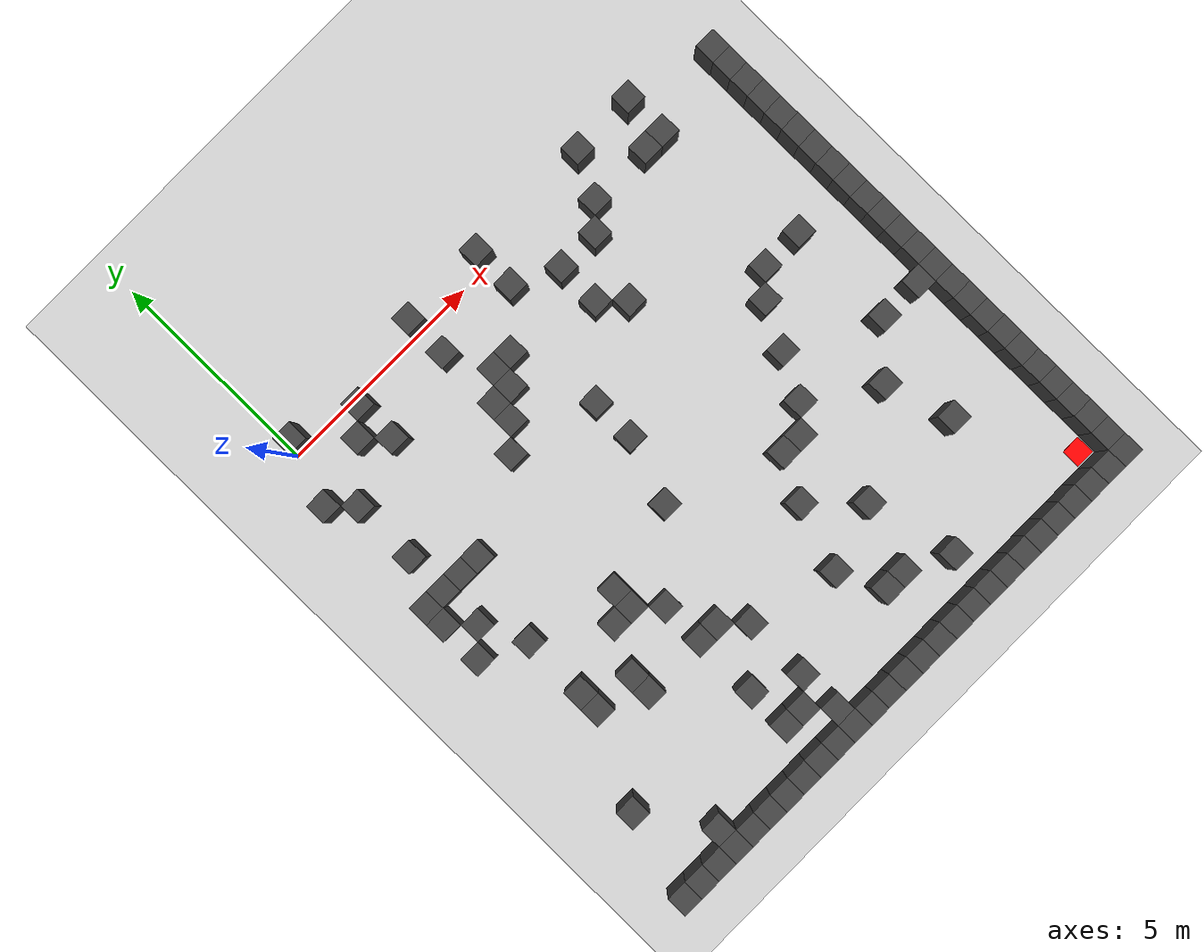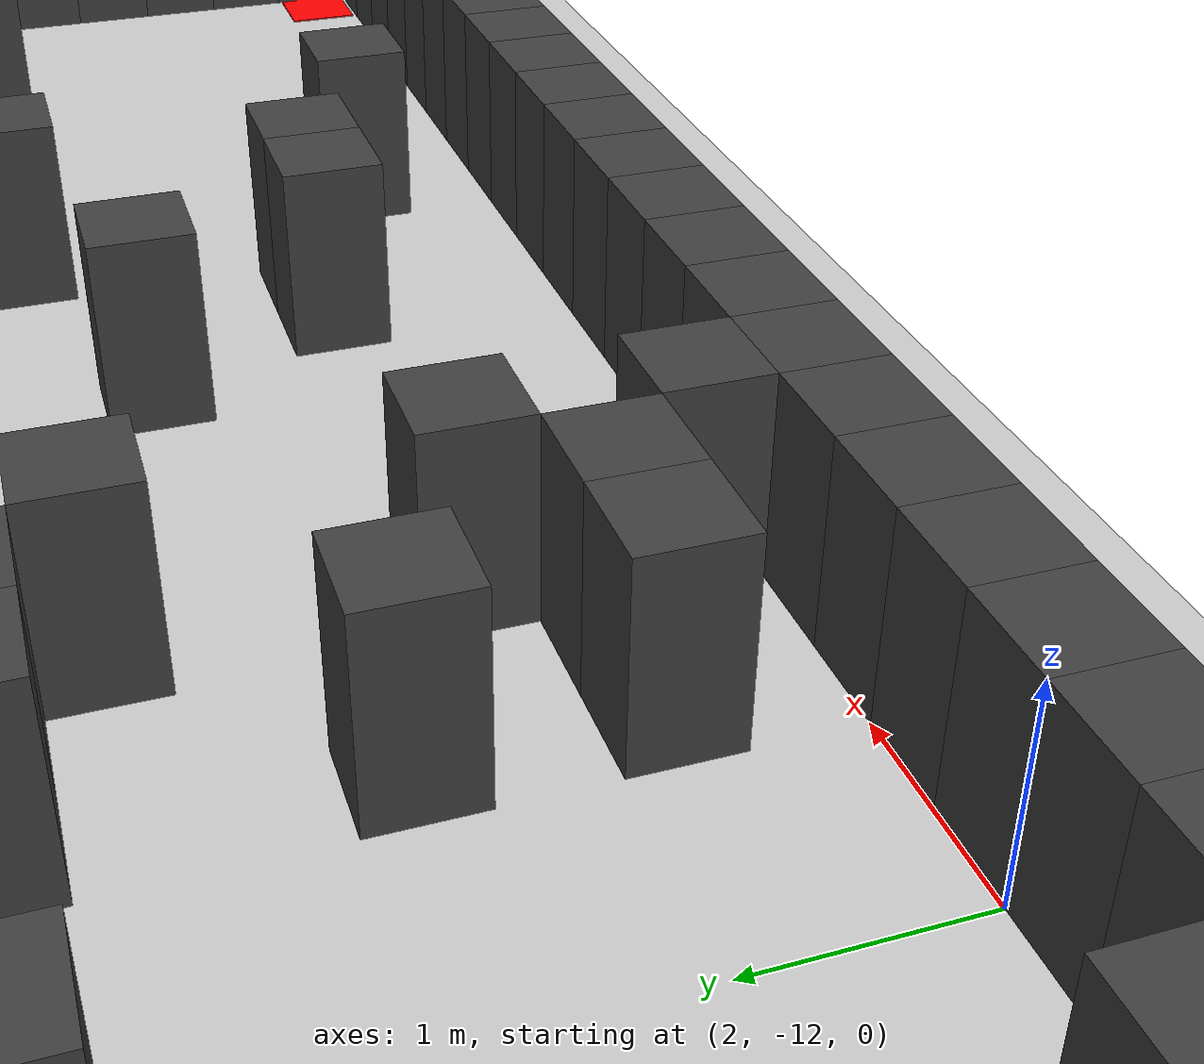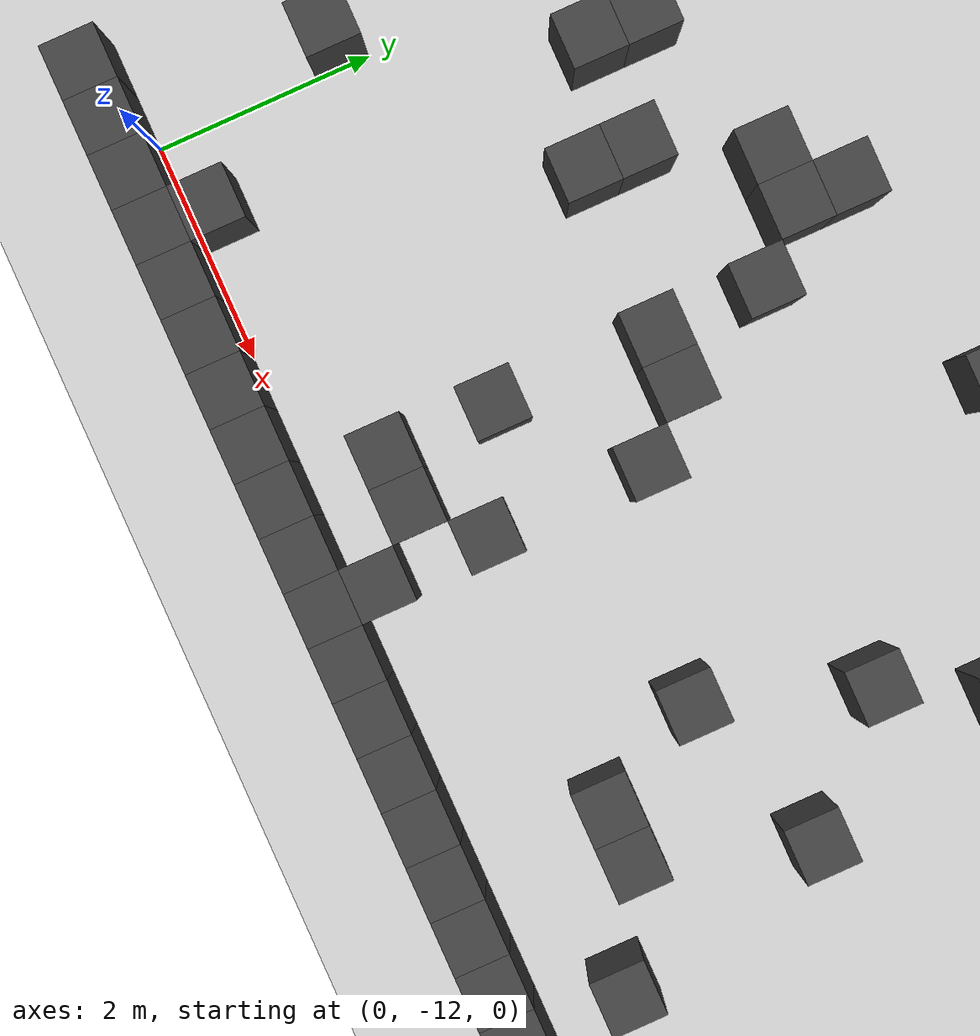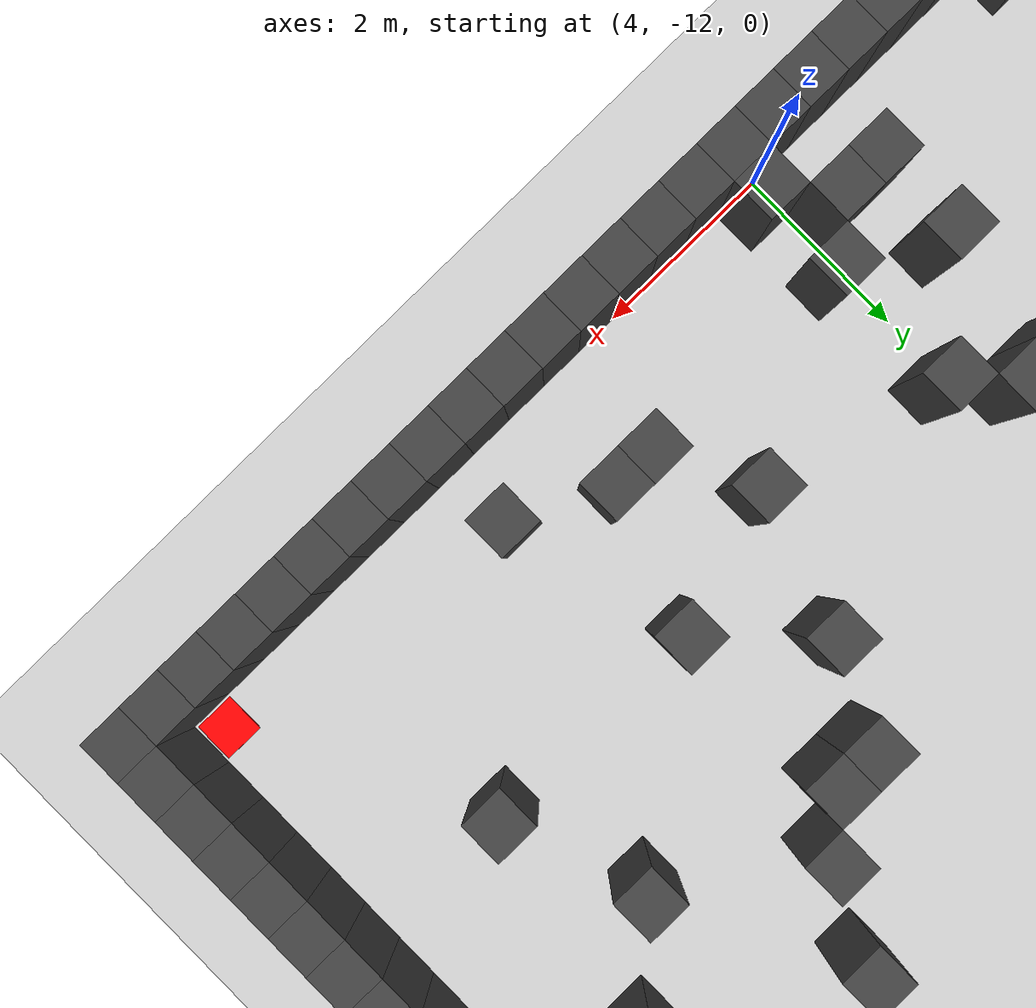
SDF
<sdf version="1.7">
 <world name="map_2523">
  <model name="ground_plane">
   <static>true</static>
   <link name="link">
    <collision name="collision">
     <geometry><plane><normal>0 0 1</normal><size>200 200</size></plane></geometry>
    </collision>
    <visual name="visual">
     <geometry><plane><normal>0 0 1</normal><size>200 200</size></plane></geometry>
     <material><ambient>0.8 0.8 0.8 1</ambient><diffuse>0.8 0.8 0.8 1</diffuse></material>
    </visual>
   </link>
  </model>
  <model name="maze_environment">
   <static>true</static>
   <link name="wall_250">
    <pose>0.250 0.250 0.500 0 0 0</pose>
    <collision name="col"><geometry><box><size>0.5 0.5 1.0</size></box></geometry></collision>
    <visual name="vis">
     <geometry><box><size>0.5 0.5 1.0</size></box></geometry>
     <material><ambient>0.15 0.15 0.15 1</ambient><diffuse>0.25 0.25 0.25 1</diffuse></material>
    </visual>
   </link>
   <link name="wall_251">
    <pose>3.750 0.250 0.500 0 0 0</pose>
    <collision name="col"><geometry><box><size>0.5 0.5 1.0</size></box></geometry></collision>
    <visual name="vis">
     <geometry><box><size>0.5 0.5 1.0</size></box></geometry>
     <material><ambient>0.15 0.15 0.15 1</ambient><diffuse>0.25 0.25 0.25 1</diffuse></material>
    </visual>
   </link>
   <link name="wall_252">
    <pose>5.750 0.250 0.500 0 0 0</pose>
    <collision name="col"><geometry><box><size>0.5 0.5 1.0</size></box></geometry></collision>
    <visual name="vis">
     <geometry><box><size>0.5 0.5 1.0</size></box></geometry>
     <material><ambient>0.15 0.15 0.15 1</ambient><diffuse>0.25 0.25 0.25 1</diffuse></material>
    </visual>
   </link>
   <link name="wall_253">
    <pose>8.750 0.250 0.500 0 0 0</pose>
    <collision name="col"><geometry><box><size>0.5 0.5 1.0</size></box></geometry></collision>
    <visual name="vis">
     <geometry><box><size>0.5 0.5 1.0</size></box></geometry>
     <material><ambient>0.15 0.15 0.15 1</ambient><diffuse>0.25 0.25 0.25 1</diffuse></material>
    </visual>
   </link>
   <link name="wall_254">
    <pose>10.250 0.250 0.500 0 0 0</pose>
    <collision name="col"><geometry><box><size>0.5 0.5 1.0</size></box></geometry></collision>
    <visual name="vis">
     <geometry><box><size>0.5 0.5 1.0</size></box></geometry>
     <material><ambient>0.15 0.15 0.15 1</ambient><diffuse>0.25 0.25 0.25 1</diffuse></material>
    </visual>
   </link>
   <link name="wall_261">
    <pose>1.750 -0.250 0.500 0 0 0</pose>
    <collision name="col"><geometry><box><size>0.5 0.5 1.0</size></box></geometry></collision>
    <visual name="vis">
     <geometry><box><size>0.5 0.5 1.0</size></box></geometry>
     <material><ambient>0.15 0.15 0.15 1</ambient><diffuse>0.25 0.25 0.25 1</diffuse></material>
    </visual>
   </link>
   <link name="wall_262">
    <pose>12.250 -0.250 0.500 0 0 0</pose>
    <collision name="col"><geometry><box><size>0.5 0.5 1.0</size></box></geometry></collision>
    <visual name="vis">
     <geometry><box><size>0.5 0.5 1.0</size></box></geometry>
     <material><ambient>0.15 0.15 0.15 1</ambient><diffuse>0.25 0.25 0.25 1</diffuse></material>
    </visual>
   </link>
   <link name="wall_266">
    <pose>1.250 -0.750 0.500 0 0 0</pose>
    <collision name="col"><geometry><box><size>0.5 0.5 1.0</size></box></geometry></collision>
    <visual name="vis">
     <geometry><box><size>0.5 0.5 1.0</size></box></geometry>
     <material><ambient>0.15 0.15 0.15 1</ambient><diffuse>0.25 0.25 0.25 1</diffuse></material>
    </visual>
   </link>
   <link name="wall_267">
    <pose>3.750 -0.750 0.500 0 0 0</pose>
    <collision name="col"><geometry><box><size>0.5 0.5 1.0</size></box></geometry></collision>
    <visual name="vis">
     <geometry><box><size>0.5 0.5 1.0</size></box></geometry>
     <material><ambient>0.15 0.15 0.15 1</ambient><diffuse>0.25 0.25 0.25 1</diffuse></material>
    </visual>
   </link>
   <link name="wall_268">
    <pose>5.750 -0.750 0.500 0 0 0</pose>
    <collision name="col"><geometry><box><size>0.5 0.5 1.0</size></box></geometry></collision>
    <visual name="vis">
     <geometry><box><size>0.5 0.5 1.0</size></box></geometry>
     <material><ambient>0.15 0.15 0.15 1</ambient><diffuse>0.25 0.25 0.25 1</diffuse></material>
    </visual>
   </link>
   <link name="wall_269">
    <pose>8.250 -0.750 0.500 0 0 0</pose>
    <collision name="col"><geometry><box><size>0.5 0.5 1.0</size></box></geometry></collision>
    <visual name="vis">
     <geometry><box><size>0.5 0.5 1.0</size></box></geometry>
     <material><ambient>0.15 0.15 0.15 1</ambient><diffuse>0.25 0.25 0.25 1</diffuse></material>
    </visual>
   </link>
   <link name="wall_270">
    <pose>9.750 -0.750 0.500 0 0 0</pose>
    <collision name="col"><geometry><box><size>0.5 0.5 1.0</size></box></geometry></collision>
    <visual name="vis">
     <geometry><box><size>0.5 0.5 1.0</size></box></geometry>
     <material><ambient>0.15 0.15 0.15 1</ambient><diffuse>0.25 0.25 0.25 1</diffuse></material>
    </visual>
   </link>
   <link name="wall_271">
    <pose>10.250 -0.750 0.500 0 0 0</pose>
    <collision name="col"><geometry><box><size>0.5 0.5 1.0</size></box></geometry></collision>
    <visual name="vis">
     <geometry><box><size>0.5 0.5 1.0</size></box></geometry>
     <material><ambient>0.15 0.15 0.15 1</ambient><diffuse>0.25 0.25 0.25 1</diffuse></material>
    </visual>
   </link>
   <link name="wall_272">
    <pose>12.250 -0.750 0.500 0 0 0</pose>
    <collision name="col"><geometry><box><size>0.5 0.5 1.0</size></box></geometry></collision>
    <visual name="vis">
     <geometry><box><size>0.5 0.5 1.0</size></box></geometry>
     <material><ambient>0.15 0.15 0.15 1</ambient><diffuse>0.25 0.25 0.25 1</diffuse></material>
    </visual>
   </link>
   <link name="wall_279">
    <pose>-0.250 -1.250 0.500 0 0 0</pose>
    <collision name="col"><geometry><box><size>0.5 0.5 1.0</size></box></geometry></collision>
    <visual name="vis">
     <geometry><box><size>0.5 0.5 1.0</size></box></geometry>
     <material><ambient>0.15 0.15 0.15 1</ambient><diffuse>0.25 0.25 0.25 1</diffuse></material>
    </visual>
   </link>
   <link name="wall_280">
    <pose>1.750 -1.250 0.500 0 0 0</pose>
    <collision name="col"><geometry><box><size>0.5 0.5 1.0</size></box></geometry></collision>
    <visual name="vis">
     <geometry><box><size>0.5 0.5 1.0</size></box></geometry>
     <material><ambient>0.15 0.15 0.15 1</ambient><diffuse>0.25 0.25 0.25 1</diffuse></material>
    </visual>
   </link>
   <link name="wall_281">
    <pose>6.750 -1.250 0.500 0 0 0</pose>
    <collision name="col"><geometry><box><size>0.5 0.5 1.0</size></box></geometry></collision>
    <visual name="vis">
     <geometry><box><size>0.5 0.5 1.0</size></box></geometry>
     <material><ambient>0.15 0.15 0.15 1</ambient><diffuse>0.25 0.25 0.25 1</diffuse></material>
    </visual>
   </link>
   <link name="wall_282">
    <pose>7.750 -1.250 0.500 0 0 0</pose>
    <collision name="col"><geometry><box><size>0.5 0.5 1.0</size></box></geometry></collision>
    <visual name="vis">
     <geometry><box><size>0.5 0.5 1.0</size></box></geometry>
     <material><ambient>0.15 0.15 0.15 1</ambient><diffuse>0.25 0.25 0.25 1</diffuse></material>
    </visual>
   </link>
   <link name="wall_283">
    <pose>12.250 -1.250 0.500 0 0 0</pose>
    <collision name="col"><geometry><box><size>0.5 0.5 1.0</size></box></geometry></collision>
    <visual name="vis">
     <geometry><box><size>0.5 0.5 1.0</size></box></geometry>
     <material><ambient>0.15 0.15 0.15 1</ambient><diffuse>0.25 0.25 0.25 1</diffuse></material>
    </visual>
   </link>
   <link name="wall_290">
    <pose>0.250 -1.750 0.500 0 0 0</pose>
    <collision name="col"><geometry><box><size>0.5 0.5 1.0</size></box></geometry></collision>
    <visual name="vis">
     <geometry><box><size>0.5 0.5 1.0</size></box></geometry>
     <material><ambient>0.15 0.15 0.15 1</ambient><diffuse>0.25 0.25 0.25 1</diffuse></material>
    </visual>
   </link>
   <link name="wall_291">
    <pose>4.250 -1.750 0.500 0 0 0</pose>
    <collision name="col"><geometry><box><size>0.5 0.5 1.0</size></box></geometry></collision>
    <visual name="vis">
     <geometry><box><size>0.5 0.5 1.0</size></box></geometry>
     <material><ambient>0.15 0.15 0.15 1</ambient><diffuse>0.25 0.25 0.25 1</diffuse></material>
    </visual>
   </link>
   <link name="wall_292">
    <pose>4.750 -1.750 0.500 0 0 0</pose>
    <collision name="col"><geometry><box><size>0.5 0.5 1.0</size></box></geometry></collision>
    <visual name="vis">
     <geometry><box><size>0.5 0.5 1.0</size></box></geometry>
     <material><ambient>0.15 0.15 0.15 1</ambient><diffuse>0.25 0.25 0.25 1</diffuse></material>
    </visual>
   </link>
   <link name="wall_293">
    <pose>12.250 -1.750 0.500 0 0 0</pose>
    <collision name="col"><geometry><box><size>0.5 0.5 1.0</size></box></geometry></collision>
    <visual name="vis">
     <geometry><box><size>0.5 0.5 1.0</size></box></geometry>
     <material><ambient>0.15 0.15 0.15 1</ambient><diffuse>0.25 0.25 0.25 1</diffuse></material>
    </visual>
   </link>
   <link name="wall_297">
    <pose>3.750 -2.250 0.500 0 0 0</pose>
    <collision name="col"><geometry><box><size>0.5 0.5 1.0</size></box></geometry></collision>
    <visual name="vis">
     <geometry><box><size>0.5 0.5 1.0</size></box></geometry>
     <material><ambient>0.15 0.15 0.15 1</ambient><diffuse>0.25 0.25 0.25 1</diffuse></material>
    </visual>
   </link>
   <link name="wall_298">
    <pose>4.250 -2.250 0.500 0 0 0</pose>
    <collision name="col"><geometry><box><size>0.5 0.5 1.0</size></box></geometry></collision>
    <visual name="vis">
     <geometry><box><size>0.5 0.5 1.0</size></box></geometry>
     <material><ambient>0.15 0.15 0.15 1</ambient><diffuse>0.25 0.25 0.25 1</diffuse></material>
    </visual>
   </link>
   <link name="wall_299">
    <pose>6.750 -2.250 0.500 0 0 0</pose>
    <collision name="col"><geometry><box><size>0.5 0.5 1.0</size></box></geometry></collision>
    <visual name="vis">
     <geometry><box><size>0.5 0.5 1.0</size></box></geometry>
     <material><ambient>0.15 0.15 0.15 1</ambient><diffuse>0.25 0.25 0.25 1</diffuse></material>
    </visual>
   </link>
   <link name="wall_300">
    <pose>12.250 -2.250 0.500 0 0 0</pose>
    <collision name="col"><geometry><box><size>0.5 0.5 1.0</size></box></geometry></collision>
    <visual name="vis">
     <geometry><box><size>0.5 0.5 1.0</size></box></geometry>
     <material><ambient>0.15 0.15 0.15 1</ambient><diffuse>0.25 0.25 0.25 1</diffuse></material>
    </visual>
   </link>
   <link name="wall_305">
    <pose>3.750 -2.750 0.500 0 0 0</pose>
    <collision name="col"><geometry><box><size>0.5 0.5 1.0</size></box></geometry></collision>
    <visual name="vis">
     <geometry><box><size>0.5 0.5 1.0</size></box></geometry>
     <material><ambient>0.15 0.15 0.15 1</ambient><diffuse>0.25 0.25 0.25 1</diffuse></material>
    </visual>
   </link>
   <link name="wall_306">
    <pose>7.250 -2.750 0.500 0 0 0</pose>
    <collision name="col"><geometry><box><size>0.5 0.5 1.0</size></box></geometry></collision>
    <visual name="vis">
     <geometry><box><size>0.5 0.5 1.0</size></box></geometry>
     <material><ambient>0.15 0.15 0.15 1</ambient><diffuse>0.25 0.25 0.25 1</diffuse></material>
    </visual>
   </link>
   <link name="wall_307">
    <pose>12.250 -2.750 0.500 0 0 0</pose>
    <collision name="col"><geometry><box><size>0.5 0.5 1.0</size></box></geometry></collision>
    <visual name="vis">
     <geometry><box><size>0.5 0.5 1.0</size></box></geometry>
     <material><ambient>0.15 0.15 0.15 1</ambient><diffuse>0.25 0.25 0.25 1</diffuse></material>
    </visual>
   </link>
   <link name="wall_312">
    <pose>0.250 -3.250 0.500 0 0 0</pose>
    <collision name="col"><geometry><box><size>0.5 0.5 1.0</size></box></geometry></collision>
    <visual name="vis">
     <geometry><box><size>0.5 0.5 1.0</size></box></geometry>
     <material><ambient>0.15 0.15 0.15 1</ambient><diffuse>0.25 0.25 0.25 1</diffuse></material>
    </visual>
   </link>
   <link name="wall_313">
    <pose>3.250 -3.250 0.500 0 0 0</pose>
    <collision name="col"><geometry><box><size>0.5 0.5 1.0</size></box></geometry></collision>
    <visual name="vis">
     <geometry><box><size>0.5 0.5 1.0</size></box></geometry>
     <material><ambient>0.15 0.15 0.15 1</ambient><diffuse>0.25 0.25 0.25 1</diffuse></material>
    </visual>
   </link>
   <link name="wall_314">
    <pose>12.250 -3.250 0.500 0 0 0</pose>
    <collision name="col"><geometry><box><size>0.5 0.5 1.0</size></box></geometry></collision>
    <visual name="vis">
     <geometry><box><size>0.5 0.5 1.0</size></box></geometry>
     <material><ambient>0.15 0.15 0.15 1</ambient><diffuse>0.25 0.25 0.25 1</diffuse></material>
    </visual>
   </link>
   <link name="wall_319">
    <pose>5.250 -3.750 0.500 0 0 0</pose>
    <collision name="col"><geometry><box><size>0.5 0.5 1.0</size></box></geometry></collision>
    <visual name="vis">
     <geometry><box><size>0.5 0.5 1.0</size></box></geometry>
     <material><ambient>0.15 0.15 0.15 1</ambient><diffuse>0.25 0.25 0.25 1</diffuse></material>
    </visual>
   </link>
   <link name="wall_320">
    <pose>12.250 -3.750 0.500 0 0 0</pose>
    <collision name="col"><geometry><box><size>0.5 0.5 1.0</size></box></geometry></collision>
    <visual name="vis">
     <geometry><box><size>0.5 0.5 1.0</size></box></geometry>
     <material><ambient>0.15 0.15 0.15 1</ambient><diffuse>0.25 0.25 0.25 1</diffuse></material>
    </visual>
   </link>
   <link name="wall_327">
    <pose>-0.250 -4.250 0.500 0 0 0</pose>
    <collision name="col"><geometry><box><size>0.5 0.5 1.0</size></box></geometry></collision>
    <visual name="vis">
     <geometry><box><size>0.5 0.5 1.0</size></box></geometry>
     <material><ambient>0.15 0.15 0.15 1</ambient><diffuse>0.25 0.25 0.25 1</diffuse></material>
    </visual>
   </link>
   <link name="wall_328">
    <pose>0.250 -4.250 0.500 0 0 0</pose>
    <collision name="col"><geometry><box><size>0.5 0.5 1.0</size></box></geometry></collision>
    <visual name="vis">
     <geometry><box><size>0.5 0.5 1.0</size></box></geometry>
     <material><ambient>0.15 0.15 0.15 1</ambient><diffuse>0.25 0.25 0.25 1</diffuse></material>
    </visual>
   </link>
   <link name="wall_329">
    <pose>0.750 -4.250 0.500 0 0 0</pose>
    <collision name="col"><geometry><box><size>0.5 0.5 1.0</size></box></geometry></collision>
    <visual name="vis">
     <geometry><box><size>0.5 0.5 1.0</size></box></geometry>
     <material><ambient>0.15 0.15 0.15 1</ambient><diffuse>0.25 0.25 0.25 1</diffuse></material>
    </visual>
   </link>
   <link name="wall_330">
    <pose>1.250 -4.250 0.500 0 0 0</pose>
    <collision name="col"><geometry><box><size>0.5 0.5 1.0</size></box></geometry></collision>
    <visual name="vis">
     <geometry><box><size>0.5 0.5 1.0</size></box></geometry>
     <material><ambient>0.15 0.15 0.15 1</ambient><diffuse>0.25 0.25 0.25 1</diffuse></material>
    </visual>
   </link>
   <link name="wall_331">
    <pose>9.750 -4.250 0.500 0 0 0</pose>
    <collision name="col"><geometry><box><size>0.5 0.5 1.0</size></box></geometry></collision>
    <visual name="vis">
     <geometry><box><size>0.5 0.5 1.0</size></box></geometry>
     <material><ambient>0.15 0.15 0.15 1</ambient><diffuse>0.25 0.25 0.25 1</diffuse></material>
    </visual>
   </link>
   <link name="wall_332">
    <pose>10.750 -4.250 0.500 0 0 0</pose>
    <collision name="col"><geometry><box><size>0.5 0.5 1.0</size></box></geometry></collision>
    <visual name="vis">
     <geometry><box><size>0.5 0.5 1.0</size></box></geometry>
     <material><ambient>0.15 0.15 0.15 1</ambient><diffuse>0.25 0.25 0.25 1</diffuse></material>
    </visual>
   </link>
   <link name="wall_333">
    <pose>12.250 -4.250 0.500 0 0 0</pose>
    <collision name="col"><geometry><box><size>0.5 0.5 1.0</size></box></geometry></collision>
    <visual name="vis">
     <geometry><box><size>0.5 0.5 1.0</size></box></geometry>
     <material><ambient>0.15 0.15 0.15 1</ambient><diffuse>0.25 0.25 0.25 1</diffuse></material>
    </visual>
   </link>
   <link name="wall_336">
    <pose>-0.250 -4.750 0.500 0 0 0</pose>
    <collision name="col"><geometry><box><size>0.5 0.5 1.0</size></box></geometry></collision>
    <visual name="vis">
     <geometry><box><size>0.5 0.5 1.0</size></box></geometry>
     <material><ambient>0.15 0.15 0.15 1</ambient><diffuse>0.25 0.25 0.25 1</diffuse></material>
    </visual>
   </link>
   <link name="wall_337">
    <pose>5.250 -4.750 0.500 0 0 0</pose>
    <collision name="col"><geometry><box><size>0.5 0.5 1.0</size></box></geometry></collision>
    <visual name="vis">
     <geometry><box><size>0.5 0.5 1.0</size></box></geometry>
     <material><ambient>0.15 0.15 0.15 1</ambient><diffuse>0.25 0.25 0.25 1</diffuse></material>
    </visual>
   </link>
   <link name="wall_338">
    <pose>9.250 -4.750 0.500 0 0 0</pose>
    <collision name="col"><geometry><box><size>0.5 0.5 1.0</size></box></geometry></collision>
    <visual name="vis">
     <geometry><box><size>0.5 0.5 1.0</size></box></geometry>
     <material><ambient>0.15 0.15 0.15 1</ambient><diffuse>0.25 0.25 0.25 1</diffuse></material>
    </visual>
   </link>
   <link name="wall_339">
    <pose>12.250 -4.750 0.500 0 0 0</pose>
    <collision name="col"><geometry><box><size>0.5 0.5 1.0</size></box></geometry></collision>
    <visual name="vis">
     <geometry><box><size>0.5 0.5 1.0</size></box></geometry>
     <material><ambient>0.15 0.15 0.15 1</ambient><diffuse>0.25 0.25 0.25 1</diffuse></material>
    </visual>
   </link>
   <link name="wall_344">
    <pose>0.250 -5.250 0.500 0 0 0</pose>
    <collision name="col"><geometry><box><size>0.5 0.5 1.0</size></box></geometry></collision>
    <visual name="vis">
     <geometry><box><size>0.5 0.5 1.0</size></box></geometry>
     <material><ambient>0.15 0.15 0.15 1</ambient><diffuse>0.25 0.25 0.25 1</diffuse></material>
    </visual>
   </link>
   <link name="wall_345">
    <pose>12.250 -5.250 0.500 0 0 0</pose>
    <collision name="col"><geometry><box><size>0.5 0.5 1.0</size></box></geometry></collision>
    <visual name="vis">
     <geometry><box><size>0.5 0.5 1.0</size></box></geometry>
     <material><ambient>0.15 0.15 0.15 1</ambient><diffuse>0.25 0.25 0.25 1</diffuse></material>
    </visual>
   </link>
   <link name="wall_352">
    <pose>-0.250 -5.750 0.500 0 0 0</pose>
    <collision name="col"><geometry><box><size>0.5 0.5 1.0</size></box></geometry></collision>
    <visual name="vis">
     <geometry><box><size>0.5 0.5 1.0</size></box></geometry>
     <material><ambient>0.15 0.15 0.15 1</ambient><diffuse>0.25 0.25 0.25 1</diffuse></material>
    </visual>
   </link>
   <link name="wall_353">
    <pose>8.750 -5.750 0.500 0 0 0</pose>
    <collision name="col"><geometry><box><size>0.5 0.5 1.0</size></box></geometry></collision>
    <visual name="vis">
     <geometry><box><size>0.5 0.5 1.0</size></box></geometry>
     <material><ambient>0.15 0.15 0.15 1</ambient><diffuse>0.25 0.25 0.25 1</diffuse></material>
    </visual>
   </link>
   <link name="wall_354">
    <pose>12.250 -5.750 0.500 0 0 0</pose>
    <collision name="col"><geometry><box><size>0.5 0.5 1.0</size></box></geometry></collision>
    <visual name="vis">
     <geometry><box><size>0.5 0.5 1.0</size></box></geometry>
     <material><ambient>0.15 0.15 0.15 1</ambient><diffuse>0.25 0.25 0.25 1</diffuse></material>
    </visual>
   </link>
   <link name="wall_356">
    <pose>0.750 -6.250 0.500 0 0 0</pose>
    <collision name="col"><geometry><box><size>0.5 0.5 1.0</size></box></geometry></collision>
    <visual name="vis">
     <geometry><box><size>0.5 0.5 1.0</size></box></geometry>
     <material><ambient>0.15 0.15 0.15 1</ambient><diffuse>0.25 0.25 0.25 1</diffuse></material>
    </visual>
   </link>
   <link name="wall_357">
    <pose>4.750 -6.250 0.500 0 0 0</pose>
    <collision name="col"><geometry><box><size>0.5 0.5 1.0</size></box></geometry></collision>
    <visual name="vis">
     <geometry><box><size>0.5 0.5 1.0</size></box></geometry>
     <material><ambient>0.15 0.15 0.15 1</ambient><diffuse>0.25 0.25 0.25 1</diffuse></material>
    </visual>
   </link>
   <link name="wall_358">
    <pose>12.250 -6.250 0.500 0 0 0</pose>
    <collision name="col"><geometry><box><size>0.5 0.5 1.0</size></box></geometry></collision>
    <visual name="vis">
     <geometry><box><size>0.5 0.5 1.0</size></box></geometry>
     <material><ambient>0.15 0.15 0.15 1</ambient><diffuse>0.25 0.25 0.25 1</diffuse></material>
    </visual>
   </link>
   <link name="wall_364">
    <pose>2.750 -6.750 0.500 0 0 0</pose>
    <collision name="col"><geometry><box><size>0.5 0.5 1.0</size></box></geometry></collision>
    <visual name="vis">
     <geometry><box><size>0.5 0.5 1.0</size></box></geometry>
     <material><ambient>0.15 0.15 0.15 1</ambient><diffuse>0.25 0.25 0.25 1</diffuse></material>
    </visual>
   </link>
   <link name="wall_365">
    <pose>8.250 -6.750 0.500 0 0 0</pose>
    <collision name="col"><geometry><box><size>0.5 0.5 1.0</size></box></geometry></collision>
    <visual name="vis">
     <geometry><box><size>0.5 0.5 1.0</size></box></geometry>
     <material><ambient>0.15 0.15 0.15 1</ambient><diffuse>0.25 0.25 0.25 1</diffuse></material>
    </visual>
   </link>
   <link name="wall_366">
    <pose>10.750 -6.750 0.500 0 0 0</pose>
    <collision name="col"><geometry><box><size>0.5 0.5 1.0</size></box></geometry></collision>
    <visual name="vis">
     <geometry><box><size>0.5 0.5 1.0</size></box></geometry>
     <material><ambient>0.15 0.15 0.15 1</ambient><diffuse>0.25 0.25 0.25 1</diffuse></material>
    </visual>
   </link>
   <link name="wall_367">
    <pose>11.750 -6.750 0.500 0 0 0</pose>
    <collision name="col"><geometry><box><size>0.5 0.5 1.0</size></box></geometry></collision>
    <visual name="vis">
     <geometry><box><size>0.5 0.5 1.0</size></box></geometry>
     <material><ambient>0.15 0.15 0.15 1</ambient><diffuse>0.25 0.25 0.25 1</diffuse></material>
    </visual>
   </link>
   <link name="wall_368">
    <pose>12.250 -6.750 0.500 0 0 0</pose>
    <collision name="col"><geometry><box><size>0.5 0.5 1.0</size></box></geometry></collision>
    <visual name="vis">
     <geometry><box><size>0.5 0.5 1.0</size></box></geometry>
     <material><ambient>0.15 0.15 0.15 1</ambient><diffuse>0.25 0.25 0.25 1</diffuse></material>
    </visual>
   </link>
   <link name="wall_373">
    <pose>2.250 -7.250 0.500 0 0 0</pose>
    <collision name="col"><geometry><box><size>0.5 0.5 1.0</size></box></geometry></collision>
    <visual name="vis">
     <geometry><box><size>0.5 0.5 1.0</size></box></geometry>
     <material><ambient>0.15 0.15 0.15 1</ambient><diffuse>0.25 0.25 0.25 1</diffuse></material>
    </visual>
   </link>
   <link name="wall_374">
    <pose>2.750 -7.250 0.500 0 0 0</pose>
    <collision name="col"><geometry><box><size>0.5 0.5 1.0</size></box></geometry></collision>
    <visual name="vis">
     <geometry><box><size>0.5 0.5 1.0</size></box></geometry>
     <material><ambient>0.15 0.15 0.15 1</ambient><diffuse>0.25 0.25 0.25 1</diffuse></material>
    </visual>
   </link>
   <link name="wall_375">
    <pose>7.250 -7.250 0.500 0 0 0</pose>
    <collision name="col"><geometry><box><size>0.5 0.5 1.0</size></box></geometry></collision>
    <visual name="vis">
     <geometry><box><size>0.5 0.5 1.0</size></box></geometry>
     <material><ambient>0.15 0.15 0.15 1</ambient><diffuse>0.25 0.25 0.25 1</diffuse></material>
    </visual>
   </link>
   <link name="wall_376">
    <pose>7.750 -7.250 0.500 0 0 0</pose>
    <collision name="col"><geometry><box><size>0.5 0.5 1.0</size></box></geometry></collision>
    <visual name="vis">
     <geometry><box><size>0.5 0.5 1.0</size></box></geometry>
     <material><ambient>0.15 0.15 0.15 1</ambient><diffuse>0.25 0.25 0.25 1</diffuse></material>
    </visual>
   </link>
   <link name="wall_377">
    <pose>12.250 -7.250 0.500 0 0 0</pose>
    <collision name="col"><geometry><box><size>0.5 0.5 1.0</size></box></geometry></collision>
    <visual name="vis">
     <geometry><box><size>0.5 0.5 1.0</size></box></geometry>
     <material><ambient>0.15 0.15 0.15 1</ambient><diffuse>0.25 0.25 0.25 1</diffuse></material>
    </visual>
   </link>
   <link name="wall_385">
    <pose>0.750 -7.750 0.500 0 0 0</pose>
    <collision name="col"><geometry><box><size>0.5 0.5 1.0</size></box></geometry></collision>
    <visual name="vis">
     <geometry><box><size>0.5 0.5 1.0</size></box></geometry>
     <material><ambient>0.15 0.15 0.15 1</ambient><diffuse>0.25 0.25 0.25 1</diffuse></material>
    </visual>
   </link>
   <link name="wall_386">
    <pose>3.250 -7.750 0.500 0 0 0</pose>
    <collision name="col"><geometry><box><size>0.5 0.5 1.0</size></box></geometry></collision>
    <visual name="vis">
     <geometry><box><size>0.5 0.5 1.0</size></box></geometry>
     <material><ambient>0.15 0.15 0.15 1</ambient><diffuse>0.25 0.25 0.25 1</diffuse></material>
    </visual>
   </link>
   <link name="wall_387">
    <pose>9.750 -7.750 0.500 0 0 0</pose>
    <collision name="col"><geometry><box><size>0.5 0.5 1.0</size></box></geometry></collision>
    <visual name="vis">
     <geometry><box><size>0.5 0.5 1.0</size></box></geometry>
     <material><ambient>0.15 0.15 0.15 1</ambient><diffuse>0.25 0.25 0.25 1</diffuse></material>
    </visual>
   </link>
   <link name="wall_388">
    <pose>12.250 -7.750 0.500 0 0 0</pose>
    <collision name="col"><geometry><box><size>0.5 0.5 1.0</size></box></geometry></collision>
    <visual name="vis">
     <geometry><box><size>0.5 0.5 1.0</size></box></geometry>
     <material><ambient>0.15 0.15 0.15 1</ambient><diffuse>0.25 0.25 0.25 1</diffuse></material>
    </visual>
   </link>
   <link name="wall_391">
    <pose>0.750 -8.250 0.500 0 0 0</pose>
    <collision name="col"><geometry><box><size>0.5 0.5 1.0</size></box></geometry></collision>
    <visual name="vis">
     <geometry><box><size>0.5 0.5 1.0</size></box></geometry>
     <material><ambient>0.15 0.15 0.15 1</ambient><diffuse>0.25 0.25 0.25 1</diffuse></material>
    </visual>
   </link>
   <link name="wall_392">
    <pose>1.750 -8.250 0.500 0 0 0</pose>
    <collision name="col"><geometry><box><size>0.5 0.5 1.0</size></box></geometry></collision>
    <visual name="vis">
     <geometry><box><size>0.5 0.5 1.0</size></box></geometry>
     <material><ambient>0.15 0.15 0.15 1</ambient><diffuse>0.25 0.25 0.25 1</diffuse></material>
    </visual>
   </link>
   <link name="wall_393">
    <pose>6.750 -8.250 0.500 0 0 0</pose>
    <collision name="col"><geometry><box><size>0.5 0.5 1.0</size></box></geometry></collision>
    <visual name="vis">
     <geometry><box><size>0.5 0.5 1.0</size></box></geometry>
     <material><ambient>0.15 0.15 0.15 1</ambient><diffuse>0.25 0.25 0.25 1</diffuse></material>
    </visual>
   </link>
   <link name="wall_394">
    <pose>12.250 -8.250 0.500 0 0 0</pose>
    <collision name="col"><geometry><box><size>0.5 0.5 1.0</size></box></geometry></collision>
    <visual name="vis">
     <geometry><box><size>0.5 0.5 1.0</size></box></geometry>
     <material><ambient>0.15 0.15 0.15 1</ambient><diffuse>0.25 0.25 0.25 1</diffuse></material>
    </visual>
   </link>
   <link name="wall_399">
    <pose>1.750 -8.750 0.500 0 0 0</pose>
    <collision name="col"><geometry><box><size>0.5 0.5 1.0</size></box></geometry></collision>
    <visual name="vis">
     <geometry><box><size>0.5 0.5 1.0</size></box></geometry>
     <material><ambient>0.15 0.15 0.15 1</ambient><diffuse>0.25 0.25 0.25 1</diffuse></material>
    </visual>
   </link>
   <link name="wall_400">
    <pose>3.250 -8.750 0.500 0 0 0</pose>
    <collision name="col"><geometry><box><size>0.5 0.5 1.0</size></box></geometry></collision>
    <visual name="vis">
     <geometry><box><size>0.5 0.5 1.0</size></box></geometry>
     <material><ambient>0.15 0.15 0.15 1</ambient><diffuse>0.25 0.25 0.25 1</diffuse></material>
    </visual>
   </link>
   <link name="wall_401">
    <pose>3.750 -8.750 0.500 0 0 0</pose>
    <collision name="col"><geometry><box><size>0.5 0.5 1.0</size></box></geometry></collision>
    <visual name="vis">
     <geometry><box><size>0.5 0.5 1.0</size></box></geometry>
     <material><ambient>0.15 0.15 0.15 1</ambient><diffuse>0.25 0.25 0.25 1</diffuse></material>
    </visual>
   </link>
   <link name="wall_402">
    <pose>12.250 -8.750 0.500 0 0 0</pose>
    <collision name="col"><geometry><box><size>0.5 0.5 1.0</size></box></geometry></collision>
    <visual name="vis">
     <geometry><box><size>0.5 0.5 1.0</size></box></geometry>
     <material><ambient>0.15 0.15 0.15 1</ambient><diffuse>0.25 0.25 0.25 1</diffuse></material>
    </visual>
   </link>
   <link name="wall_409">
    <pose>4.250 -9.250 0.500 0 0 0</pose>
    <collision name="col"><geometry><box><size>0.5 0.5 1.0</size></box></geometry></collision>
    <visual name="vis">
     <geometry><box><size>0.5 0.5 1.0</size></box></geometry>
     <material><ambient>0.15 0.15 0.15 1</ambient><diffuse>0.25 0.25 0.25 1</diffuse></material>
    </visual>
   </link>
   <link name="wall_410">
    <pose>7.750 -9.250 0.500 0 0 0</pose>
    <collision name="col"><geometry><box><size>0.5 0.5 1.0</size></box></geometry></collision>
    <visual name="vis">
     <geometry><box><size>0.5 0.5 1.0</size></box></geometry>
     <material><ambient>0.15 0.15 0.15 1</ambient><diffuse>0.25 0.25 0.25 1</diffuse></material>
    </visual>
   </link>
   <link name="wall_411">
    <pose>10.250 -9.250 0.500 0 0 0</pose>
    <collision name="col"><geometry><box><size>0.5 0.5 1.0</size></box></geometry></collision>
    <visual name="vis">
     <geometry><box><size>0.5 0.5 1.0</size></box></geometry>
     <material><ambient>0.15 0.15 0.15 1</ambient><diffuse>0.25 0.25 0.25 1</diffuse></material>
    </visual>
   </link>
   <link name="wall_412">
    <pose>12.250 -9.250 0.500 0 0 0</pose>
    <collision name="col"><geometry><box><size>0.5 0.5 1.0</size></box></geometry></collision>
    <visual name="vis">
     <geometry><box><size>0.5 0.5 1.0</size></box></geometry>
     <material><ambient>0.15 0.15 0.15 1</ambient><diffuse>0.25 0.25 0.25 1</diffuse></material>
    </visual>
   </link>
   <link name="wall_418">
    <pose>6.250 -9.750 0.500 0 0 0</pose>
    <collision name="col"><geometry><box><size>0.5 0.5 1.0</size></box></geometry></collision>
    <visual name="vis">
     <geometry><box><size>0.5 0.5 1.0</size></box></geometry>
     <material><ambient>0.15 0.15 0.15 1</ambient><diffuse>0.25 0.25 0.25 1</diffuse></material>
    </visual>
   </link>
   <link name="wall_419">
    <pose>12.250 -9.750 0.500 0 0 0</pose>
    <collision name="col"><geometry><box><size>0.5 0.5 1.0</size></box></geometry></collision>
    <visual name="vis">
     <geometry><box><size>0.5 0.5 1.0</size></box></geometry>
     <material><ambient>0.15 0.15 0.15 1</ambient><diffuse>0.25 0.25 0.25 1</diffuse></material>
    </visual>
   </link>
   <link name="wall_423">
    <pose>-0.250 -10.250 0.500 0 0 0</pose>
    <collision name="col"><geometry><box><size>0.5 0.5 1.0</size></box></geometry></collision>
    <visual name="vis">
     <geometry><box><size>0.5 0.5 1.0</size></box></geometry>
     <material><ambient>0.15 0.15 0.15 1</ambient><diffuse>0.25 0.25 0.25 1</diffuse></material>
    </visual>
   </link>
   <link name="wall_424">
    <pose>3.250 -10.250 0.500 0 0 0</pose>
    <collision name="col"><geometry><box><size>0.5 0.5 1.0</size></box></geometry></collision>
    <visual name="vis">
     <geometry><box><size>0.5 0.5 1.0</size></box></geometry>
     <material><ambient>0.15 0.15 0.15 1</ambient><diffuse>0.25 0.25 0.25 1</diffuse></material>
    </visual>
   </link>
   <link name="wall_425">
    <pose>12.250 -10.250 0.500 0 0 0</pose>
    <collision name="col"><geometry><box><size>0.5 0.5 1.0</size></box></geometry></collision>
    <visual name="vis">
     <geometry><box><size>0.5 0.5 1.0</size></box></geometry>
     <material><ambient>0.15 0.15 0.15 1</ambient><diffuse>0.25 0.25 0.25 1</diffuse></material>
    </visual>
   </link>
   <link name="wall_430">
    <pose>4.250 -10.750 0.500 0 0 0</pose>
    <collision name="col"><geometry><box><size>0.5 0.5 1.0</size></box></geometry></collision>
    <visual name="vis">
     <geometry><box><size>0.5 0.5 1.0</size></box></geometry>
     <material><ambient>0.15 0.15 0.15 1</ambient><diffuse>0.25 0.25 0.25 1</diffuse></material>
    </visual>
   </link>
   <link name="wall_431">
    <pose>6.750 -10.750 0.500 0 0 0</pose>
    <collision name="col"><geometry><box><size>0.5 0.5 1.0</size></box></geometry></collision>
    <visual name="vis">
     <geometry><box><size>0.5 0.5 1.0</size></box></geometry>
     <material><ambient>0.15 0.15 0.15 1</ambient><diffuse>0.25 0.25 0.25 1</diffuse></material>
    </visual>
   </link>
   <link name="wall_432">
    <pose>7.250 -10.750 0.500 0 0 0</pose>
    <collision name="col"><geometry><box><size>0.5 0.5 1.0</size></box></geometry></collision>
    <visual name="vis">
     <geometry><box><size>0.5 0.5 1.0</size></box></geometry>
     <material><ambient>0.15 0.15 0.15 1</ambient><diffuse>0.25 0.25 0.25 1</diffuse></material>
    </visual>
   </link>
   <link name="wall_433">
    <pose>12.250 -10.750 0.500 0 0 0</pose>
    <collision name="col"><geometry><box><size>0.5 0.5 1.0</size></box></geometry></collision>
    <visual name="vis">
     <geometry><box><size>0.5 0.5 1.0</size></box></geometry>
     <material><ambient>0.15 0.15 0.15 1</ambient><diffuse>0.25 0.25 0.25 1</diffuse></material>
    </visual>
   </link>
   <link name="wall_437">
    <pose>3.250 -11.250 0.500 0 0 0</pose>
    <collision name="col"><geometry><box><size>0.5 0.5 1.0</size></box></geometry></collision>
    <visual name="vis">
     <geometry><box><size>0.5 0.5 1.0</size></box></geometry>
     <material><ambient>0.15 0.15 0.15 1</ambient><diffuse>0.25 0.25 0.25 1</diffuse></material>
    </visual>
   </link>
   <link name="wall_438">
    <pose>3.750 -11.250 0.500 0 0 0</pose>
    <collision name="col"><geometry><box><size>0.5 0.5 1.0</size></box></geometry></collision>
    <visual name="vis">
     <geometry><box><size>0.5 0.5 1.0</size></box></geometry>
     <material><ambient>0.15 0.15 0.15 1</ambient><diffuse>0.25 0.25 0.25 1</diffuse></material>
    </visual>
   </link>
   <link name="wall_439">
    <pose>8.250 -11.250 0.500 0 0 0</pose>
    <collision name="col"><geometry><box><size>0.5 0.5 1.0</size></box></geometry></collision>
    <visual name="vis">
     <geometry><box><size>0.5 0.5 1.0</size></box></geometry>
     <material><ambient>0.15 0.15 0.15 1</ambient><diffuse>0.25 0.25 0.25 1</diffuse></material>
    </visual>
   </link>
   <link name="wall_440">
    <pose>12.250 -11.250 0.500 0 0 0</pose>
    <collision name="col"><geometry><box><size>0.5 0.5 1.0</size></box></geometry></collision>
    <visual name="vis">
     <geometry><box><size>0.5 0.5 1.0</size></box></geometry>
     <material><ambient>0.15 0.15 0.15 1</ambient><diffuse>0.25 0.25 0.25 1</diffuse></material>
    </visual>
   </link>
   <link name="wall_443">
    <pose>0.750 -11.750 0.500 0 0 0</pose>
    <collision name="col"><geometry><box><size>0.5 0.5 1.0</size></box></geometry></collision>
    <visual name="vis">
     <geometry><box><size>0.5 0.5 1.0</size></box></geometry>
     <material><ambient>0.15 0.15 0.15 1</ambient><diffuse>0.25 0.25 0.25 1</diffuse></material>
    </visual>
   </link>
   <link name="wall_444">
    <pose>4.250 -11.750 0.500 0 0 0</pose>
    <collision name="col"><geometry><box><size>0.5 0.5 1.0</size></box></geometry></collision>
    <visual name="vis">
     <geometry><box><size>0.5 0.5 1.0</size></box></geometry>
     <material><ambient>0.15 0.15 0.15 1</ambient><diffuse>0.25 0.25 0.25 1</diffuse></material>
    </visual>
   </link>
   <link name="wall_445">
    <pose>12.250 -11.750 0.500 0 0 0</pose>
    <collision name="col"><geometry><box><size>0.5 0.5 1.0</size></box></geometry></collision>
    <visual name="vis">
     <geometry><box><size>0.5 0.5 1.0</size></box></geometry>
     <material><ambient>0.15 0.15 0.15 1</ambient><diffuse>0.25 0.25 0.25 1</diffuse></material>
    </visual>
   </link>
   <link name="wall_469">
    <pose>-0.750 -12.250 0.500 0 0 0</pose>
    <collision name="col"><geometry><box><size>0.5 0.5 1.0</size></box></geometry></collision>
    <visual name="vis">
     <geometry><box><size>0.5 0.5 1.0</size></box></geometry>
     <material><ambient>0.15 0.15 0.15 1</ambient><diffuse>0.25 0.25 0.25 1</diffuse></material>
    </visual>
   </link>
   <link name="wall_470">
    <pose>-0.250 -12.250 0.500 0 0 0</pose>
    <collision name="col"><geometry><box><size>0.5 0.5 1.0</size></box></geometry></collision>
    <visual name="vis">
     <geometry><box><size>0.5 0.5 1.0</size></box></geometry>
     <material><ambient>0.15 0.15 0.15 1</ambient><diffuse>0.25 0.25 0.25 1</diffuse></material>
    </visual>
   </link>
   <link name="wall_471">
    <pose>0.250 -12.250 0.500 0 0 0</pose>
    <collision name="col"><geometry><box><size>0.5 0.5 1.0</size></box></geometry></collision>
    <visual name="vis">
     <geometry><box><size>0.5 0.5 1.0</size></box></geometry>
     <material><ambient>0.15 0.15 0.15 1</ambient><diffuse>0.25 0.25 0.25 1</diffuse></material>
    </visual>
   </link>
   <link name="wall_472">
    <pose>0.750 -12.250 0.500 0 0 0</pose>
    <collision name="col"><geometry><box><size>0.5 0.5 1.0</size></box></geometry></collision>
    <visual name="vis">
     <geometry><box><size>0.5 0.5 1.0</size></box></geometry>
     <material><ambient>0.15 0.15 0.15 1</ambient><diffuse>0.25 0.25 0.25 1</diffuse></material>
    </visual>
   </link>
   <link name="wall_473">
    <pose>1.250 -12.250 0.500 0 0 0</pose>
    <collision name="col"><geometry><box><size>0.5 0.5 1.0</size></box></geometry></collision>
    <visual name="vis">
     <geometry><box><size>0.5 0.5 1.0</size></box></geometry>
     <material><ambient>0.15 0.15 0.15 1</ambient><diffuse>0.25 0.25 0.25 1</diffuse></material>
    </visual>
   </link>
   <link name="wall_474">
    <pose>1.750 -12.250 0.500 0 0 0</pose>
    <collision name="col"><geometry><box><size>0.5 0.5 1.0</size></box></geometry></collision>
    <visual name="vis">
     <geometry><box><size>0.5 0.5 1.0</size></box></geometry>
     <material><ambient>0.15 0.15 0.15 1</ambient><diffuse>0.25 0.25 0.25 1</diffuse></material>
    </visual>
   </link>
   <link name="wall_475">
    <pose>2.250 -12.250 0.500 0 0 0</pose>
    <collision name="col"><geometry><box><size>0.5 0.5 1.0</size></box></geometry></collision>
    <visual name="vis">
     <geometry><box><size>0.5 0.5 1.0</size></box></geometry>
     <material><ambient>0.15 0.15 0.15 1</ambient><diffuse>0.25 0.25 0.25 1</diffuse></material>
    </visual>
   </link>
   <link name="wall_476">
    <pose>2.750 -12.250 0.500 0 0 0</pose>
    <collision name="col"><geometry><box><size>0.5 0.5 1.0</size></box></geometry></collision>
    <visual name="vis">
     <geometry><box><size>0.5 0.5 1.0</size></box></geometry>
     <material><ambient>0.15 0.15 0.15 1</ambient><diffuse>0.25 0.25 0.25 1</diffuse></material>
    </visual>
   </link>
   <link name="wall_477">
    <pose>3.250 -12.250 0.500 0 0 0</pose>
    <collision name="col"><geometry><box><size>0.5 0.5 1.0</size></box></geometry></collision>
    <visual name="vis">
     <geometry><box><size>0.5 0.5 1.0</size></box></geometry>
     <material><ambient>0.15 0.15 0.15 1</ambient><diffuse>0.25 0.25 0.25 1</diffuse></material>
    </visual>
   </link>
   <link name="wall_478">
    <pose>3.750 -12.250 0.500 0 0 0</pose>
    <collision name="col"><geometry><box><size>0.5 0.5 1.0</size></box></geometry></collision>
    <visual name="vis">
     <geometry><box><size>0.5 0.5 1.0</size></box></geometry>
     <material><ambient>0.15 0.15 0.15 1</ambient><diffuse>0.25 0.25 0.25 1</diffuse></material>
    </visual>
   </link>
   <link name="wall_479">
    <pose>4.250 -12.250 0.500 0 0 0</pose>
    <collision name="col"><geometry><box><size>0.5 0.5 1.0</size></box></geometry></collision>
    <visual name="vis">
     <geometry><box><size>0.5 0.5 1.0</size></box></geometry>
     <material><ambient>0.15 0.15 0.15 1</ambient><diffuse>0.25 0.25 0.25 1</diffuse></material>
    </visual>
   </link>
   <link name="wall_480">
    <pose>4.750 -12.250 0.500 0 0 0</pose>
    <collision name="col"><geometry><box><size>0.5 0.5 1.0</size></box></geometry></collision>
    <visual name="vis">
     <geometry><box><size>0.5 0.5 1.0</size></box></geometry>
     <material><ambient>0.15 0.15 0.15 1</ambient><diffuse>0.25 0.25 0.25 1</diffuse></material>
    </visual>
   </link>
   <link name="wall_481">
    <pose>5.250 -12.250 0.500 0 0 0</pose>
    <collision name="col"><geometry><box><size>0.5 0.5 1.0</size></box></geometry></collision>
    <visual name="vis">
     <geometry><box><size>0.5 0.5 1.0</size></box></geometry>
     <material><ambient>0.15 0.15 0.15 1</ambient><diffuse>0.25 0.25 0.25 1</diffuse></material>
    </visual>
   </link>
   <link name="wall_482">
    <pose>5.750 -12.250 0.500 0 0 0</pose>
    <collision name="col"><geometry><box><size>0.5 0.5 1.0</size></box></geometry></collision>
    <visual name="vis">
     <geometry><box><size>0.5 0.5 1.0</size></box></geometry>
     <material><ambient>0.15 0.15 0.15 1</ambient><diffuse>0.25 0.25 0.25 1</diffuse></material>
    </visual>
   </link>
   <link name="wall_483">
    <pose>6.250 -12.250 0.500 0 0 0</pose>
    <collision name="col"><geometry><box><size>0.5 0.5 1.0</size></box></geometry></collision>
    <visual name="vis">
     <geometry><box><size>0.5 0.5 1.0</size></box></geometry>
     <material><ambient>0.15 0.15 0.15 1</ambient><diffuse>0.25 0.25 0.25 1</diffuse></material>
    </visual>
   </link>
   <link name="wall_484">
    <pose>6.750 -12.250 0.500 0 0 0</pose>
    <collision name="col"><geometry><box><size>0.5 0.5 1.0</size></box></geometry></collision>
    <visual name="vis">
     <geometry><box><size>0.5 0.5 1.0</size></box></geometry>
     <material><ambient>0.15 0.15 0.15 1</ambient><diffuse>0.25 0.25 0.25 1</diffuse></material>
    </visual>
   </link>
   <link name="wall_485">
    <pose>7.250 -12.250 0.500 0 0 0</pose>
    <collision name="col"><geometry><box><size>0.5 0.5 1.0</size></box></geometry></collision>
    <visual name="vis">
     <geometry><box><size>0.5 0.5 1.0</size></box></geometry>
     <material><ambient>0.15 0.15 0.15 1</ambient><diffuse>0.25 0.25 0.25 1</diffuse></material>
    </visual>
   </link>
   <link name="wall_486">
    <pose>7.750 -12.250 0.500 0 0 0</pose>
    <collision name="col"><geometry><box><size>0.5 0.5 1.0</size></box></geometry></collision>
    <visual name="vis">
     <geometry><box><size>0.5 0.5 1.0</size></box></geometry>
     <material><ambient>0.15 0.15 0.15 1</ambient><diffuse>0.25 0.25 0.25 1</diffuse></material>
    </visual>
   </link>
   <link name="wall_487">
    <pose>8.250 -12.250 0.500 0 0 0</pose>
    <collision name="col"><geometry><box><size>0.5 0.5 1.0</size></box></geometry></collision>
    <visual name="vis">
     <geometry><box><size>0.5 0.5 1.0</size></box></geometry>
     <material><ambient>0.15 0.15 0.15 1</ambient><diffuse>0.25 0.25 0.25 1</diffuse></material>
    </visual>
   </link>
   <link name="wall_488">
    <pose>8.750 -12.250 0.500 0 0 0</pose>
    <collision name="col"><geometry><box><size>0.5 0.5 1.0</size></box></geometry></collision>
    <visual name="vis">
     <geometry><box><size>0.5 0.5 1.0</size></box></geometry>
     <material><ambient>0.15 0.15 0.15 1</ambient><diffuse>0.25 0.25 0.25 1</diffuse></material>
    </visual>
   </link>
   <link name="wall_489">
    <pose>9.250 -12.250 0.500 0 0 0</pose>
    <collision name="col"><geometry><box><size>0.5 0.5 1.0</size></box></geometry></collision>
    <visual name="vis">
     <geometry><box><size>0.5 0.5 1.0</size></box></geometry>
     <material><ambient>0.15 0.15 0.15 1</ambient><diffuse>0.25 0.25 0.25 1</diffuse></material>
    </visual>
   </link>
   <link name="wall_490">
    <pose>9.750 -12.250 0.500 0 0 0</pose>
    <collision name="col"><geometry><box><size>0.5 0.5 1.0</size></box></geometry></collision>
    <visual name="vis">
     <geometry><box><size>0.5 0.5 1.0</size></box></geometry>
     <material><ambient>0.15 0.15 0.15 1</ambient><diffuse>0.25 0.25 0.25 1</diffuse></material>
    </visual>
   </link>
   <link name="wall_491">
    <pose>10.250 -12.250 0.500 0 0 0</pose>
    <collision name="col"><geometry><box><size>0.5 0.5 1.0</size></box></geometry></collision>
    <visual name="vis">
     <geometry><box><size>0.5 0.5 1.0</size></box></geometry>
     <material><ambient>0.15 0.15 0.15 1</ambient><diffuse>0.25 0.25 0.25 1</diffuse></material>
    </visual>
   </link>
   <link name="wall_492">
    <pose>10.750 -12.250 0.500 0 0 0</pose>
    <collision name="col"><geometry><box><size>0.5 0.5 1.0</size></box></geometry></collision>
    <visual name="vis">
     <geometry><box><size>0.5 0.5 1.0</size></box></geometry>
     <material><ambient>0.15 0.15 0.15 1</ambient><diffuse>0.25 0.25 0.25 1</diffuse></material>
    </visual>
   </link>
   <link name="wall_493">
    <pose>11.250 -12.250 0.500 0 0 0</pose>
    <collision name="col"><geometry><box><size>0.5 0.5 1.0</size></box></geometry></collision>
    <visual name="vis">
     <geometry><box><size>0.5 0.5 1.0</size></box></geometry>
     <material><ambient>0.15 0.15 0.15 1</ambient><diffuse>0.25 0.25 0.25 1</diffuse></material>
    </visual>
   </link>
   <link name="wall_494">
    <pose>11.750 -12.250 0.500 0 0 0</pose>
    <collision name="col"><geometry><box><size>0.5 0.5 1.0</size></box></geometry></collision>
    <visual name="vis">
     <geometry><box><size>0.5 0.5 1.0</size></box></geometry>
     <material><ambient>0.15 0.15 0.15 1</ambient><diffuse>0.25 0.25 0.25 1</diffuse></material>
    </visual>
   </link>
   <link name="wall_495">
    <pose>12.250 -12.250 0.500 0 0 0</pose>
    <collision name="col"><geometry><box><size>0.5 0.5 1.0</size></box></geometry></collision>
    <visual name="vis">
     <geometry><box><size>0.5 0.5 1.0</size></box></geometry>
     <material><ambient>0.15 0.15 0.15 1</ambient><diffuse>0.25 0.25 0.25 1</diffuse></material>
    </visual>
   </link>
   <link name="goal_zone">
    <pose>11.750 -11.750 0.005 0 0 0</pose>
    <visual name="vis">
     <geometry><box><size>0.45 0.45 0.01</size></box></geometry>
     <material>
      <ambient>1.0 0.0 0.0 1</ambient>
      <diffuse>1.0 0.0 0.0 1</diffuse>
      <emissive>0.60 0.00 0.00 1</emissive>
     </material>
    </visual>
   </link>
  </model>
 </world>
</sdf>
